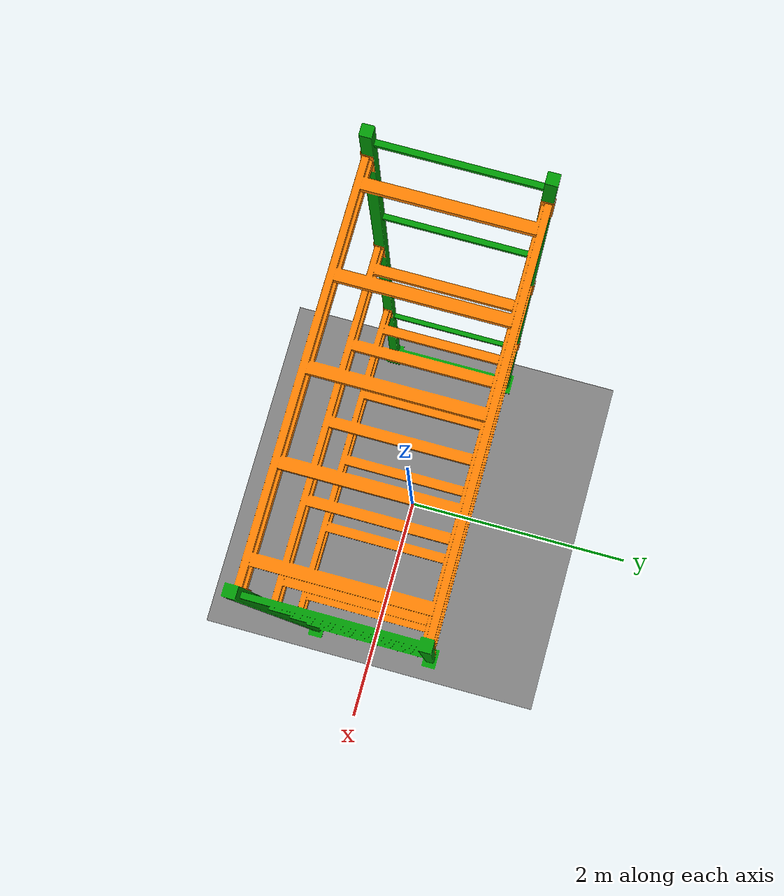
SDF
<?xml version='1.0'?>
<sdf version='1.6'>
  <model name='palletRack'>
    <static>1</static>
    <link name='link'>
      <pose>0 0 0 0 -0 0</pose>
      <visual name='visual'>
        <pose>0 0 0 0 -0 0</pose>
        <geometry>
          <mesh>
            <uri>palletRack.dae</uri>
            <scale>1 1 1</scale>
          </mesh>
        </geometry>
      </visual>
      <collision name='collision'>
        <pose>0 0 0 0 -0 0</pose>
        <geometry>
          <mesh>
            <uri>palletRack.dae</uri>
            <scale>1 1 1</scale>
          </mesh>
        </geometry>
      </collision>
    </link>
  </model>
</sdf>
